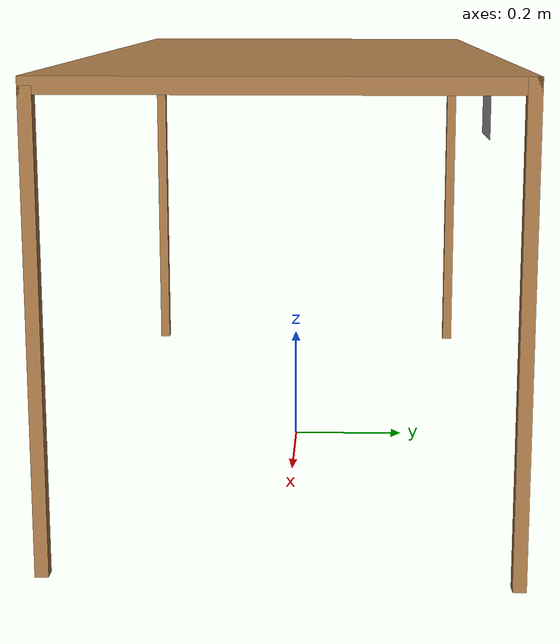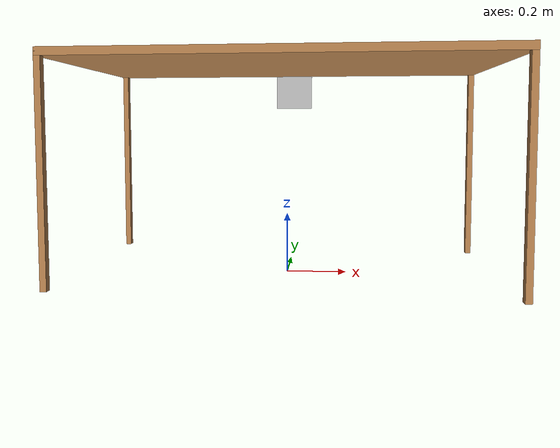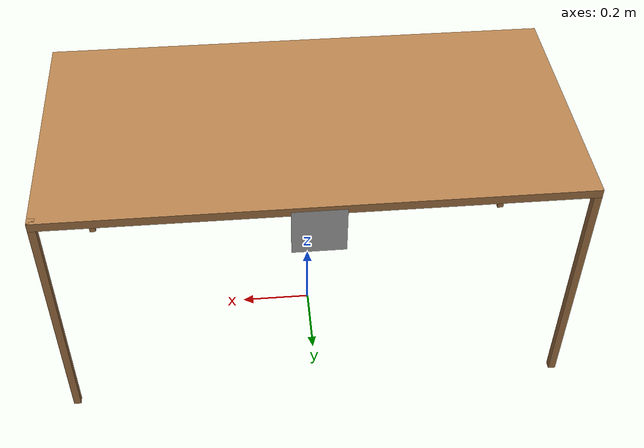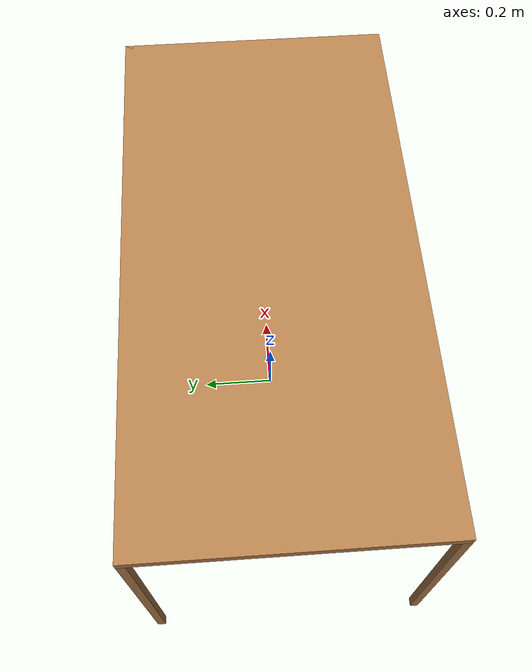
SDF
<?xml version="1.0" ?>
<sdf version='1.4'>
    <model name='*meeting_room_table_ar'>
        <pose>0.000000 0.000000 0.000000 0.000000 0.000000 0.000000</pose>
        <link name='*meeting_room_table_top'>
            <pose>0.000000 0.000000 0.712500 0.000000 -0.000000 0.000000</pose>
            <collision name='collision'>
                <geometry>
                    <box>
                        <size>1.400000 0.700000 0.025000</size>
                    </box>
                </geometry>
            </collision>
            <visual name='visual'>
                <geometry>
                    <box>
                        <size>1.400000 0.700000 0.025000</size>
                    </box>
                </geometry>
                <material>
                    <script>
                        <uri>model://base_materials/wood/scripts/wood.material</uri>
                        <name>base_materials/dark_wood</name>
                    </script>
                </material>
            </visual>

			<visual name='marker_0001'>
          		<pose>0 0.35 -0.07 0 1.57 -1.57</pose>
          		<geometry>
            		<box>
				        <size>0.14 0.14 0.0001</size>
				    </box>
          		</geometry>

				<material>
				<script>
				    <uri>model://marker/0001/scripts</uri>
				    <uri>model://marker/0001/textures</uri>
				    <name>Marker/0001</name>
				</script>
				</material>
        	</visual>
        </link>
        <link name='*meeting_room_table_leg1'>
            <pose>0.690000 0.340000 0.362500 0.000000 -0.000000 0.000000</pose>
            <collision name='collision'>
                <geometry>
                    <box>
                        <size>0.020000 0.020000 0.725000</size>
                    </box>
                </geometry>
            </collision>
            <visual name='visual'>
                <geometry>
                    <box>
                        <size>0.020000 0.020000 0.725000</size>
                    </box>
                </geometry>
                <material>
                    <script>
                        <uri>model://base_materials/wood/scripts/wood.material</uri>
                        <name>base_materials/dark_wood</name>
                    </script>
                </material>
            </visual>
        </link>
        <link name='*meeting_room_table_leg2'>
            <pose>-0.690000 0.340000 0.362500 0.000000 -0.000000 0.000000</pose>
            <collision name='collision'>
                <geometry>
                    <box>
                        <size>0.020000 0.020000 0.700000</size>
                    </box>
                </geometry>
            </collision>
            <visual name='visual'>
                <geometry>
                    <box>
                        <size>0.020000 0.020000 0.700000</size>
                    </box>
                </geometry>
                <material>
                    <script>
                        <uri>model://base_materials/wood/scripts/wood.material</uri>
                        <name>base_materials/dark_wood</name>
                    </script>
                </material>
            </visual>
        </link>
        <link name='*meeting_room_table_leg3'>
            <pose>0.690000 -0.340000 0.362500 0.000000 -0.000000 0.000000</pose>
            <collision name='collision'>
                <geometry>
                    <box>
                        <size>0.020000 0.020000 0.700000</size>
                    </box>
                </geometry>
            </collision>
            <visual name='visual'>
                <geometry>
                    <box>
                        <size>0.020000 0.020000 0.700000</size>
                    </box>
                </geometry>
                <material>
                    <script>
                        <uri>model://base_materials/wood/scripts/wood.material</uri>
                        <name>base_materials/dark_wood</name>
                    </script>
                </material>
            </visual>
        </link>
        <link name='*meeting_room_table_leg4'>
            <pose>-0.690000 -0.340000 0.362500 0.000000 -0.000000 0.000000</pose>
            <collision name='collision'>
                <geometry>
                    <box>
                        <size>0.020000 0.020000 0.700000</size>
                    </box>
                </geometry>
            </collision>
            <visual name='visual'>
                <geometry>
                    <box>
                        <size>0.020000 0.020000 0.700000</size>
                    </box>
                </geometry>
                <material>
                    <script>
                        <uri>model://base_materials/wood/scripts/wood.material</uri>
                        <name>base_materials/dark_wood</name>
                    </script>
                </material>
            </visual>
        </link>
        <static>1</static>
    </model>
</sdf>
